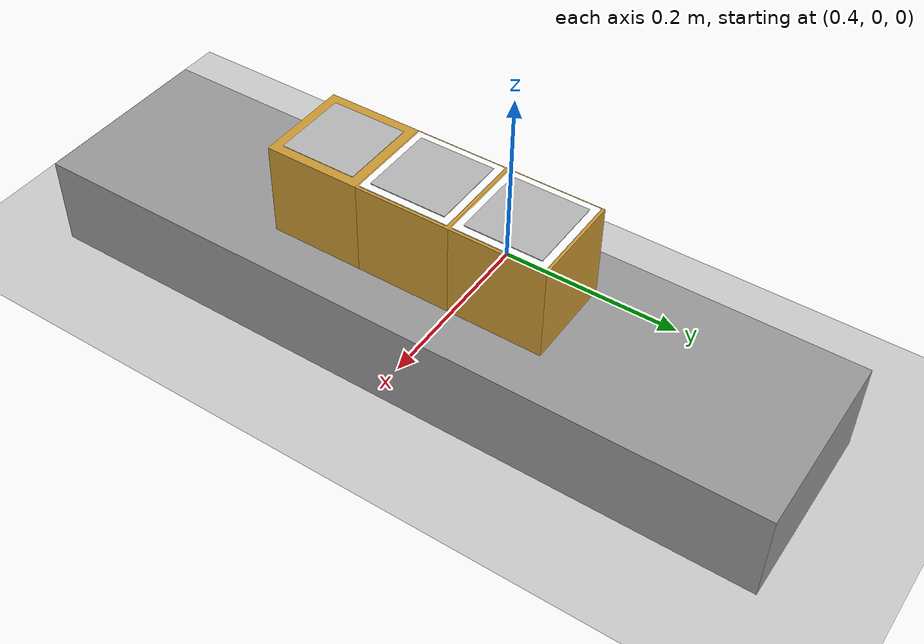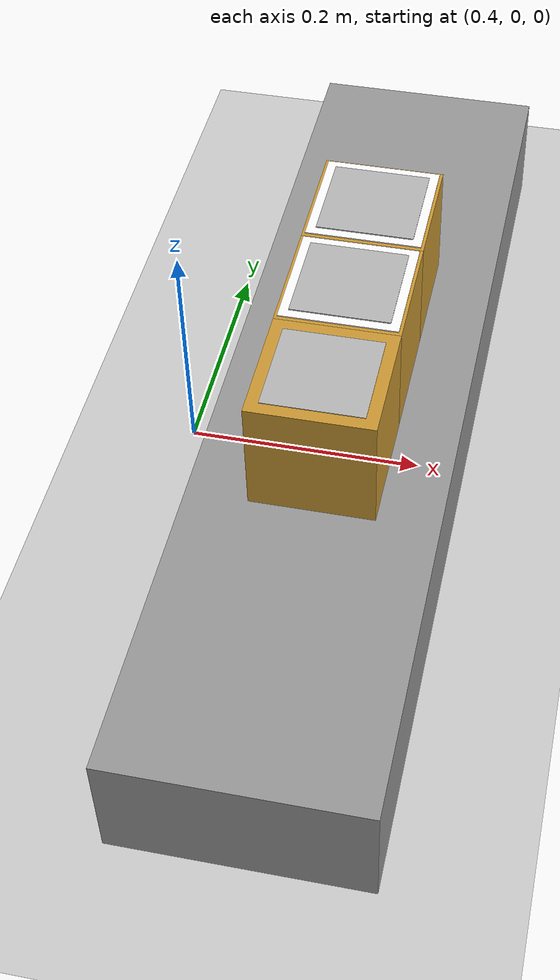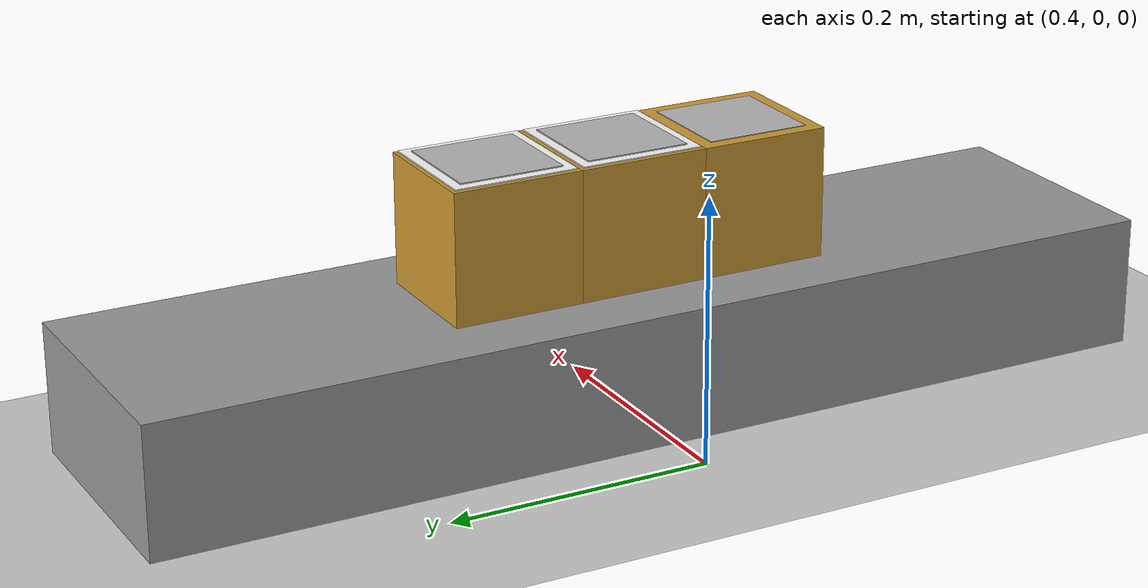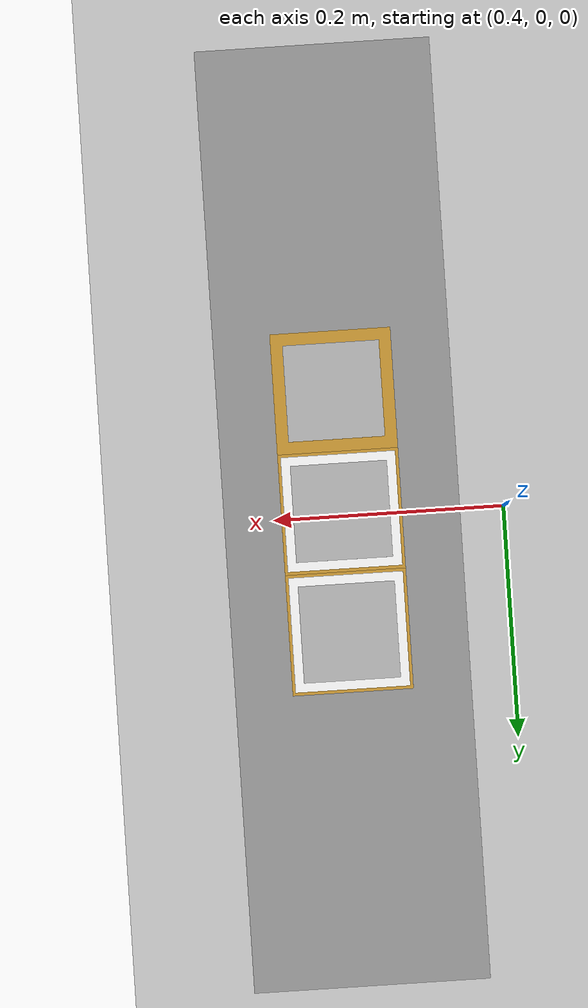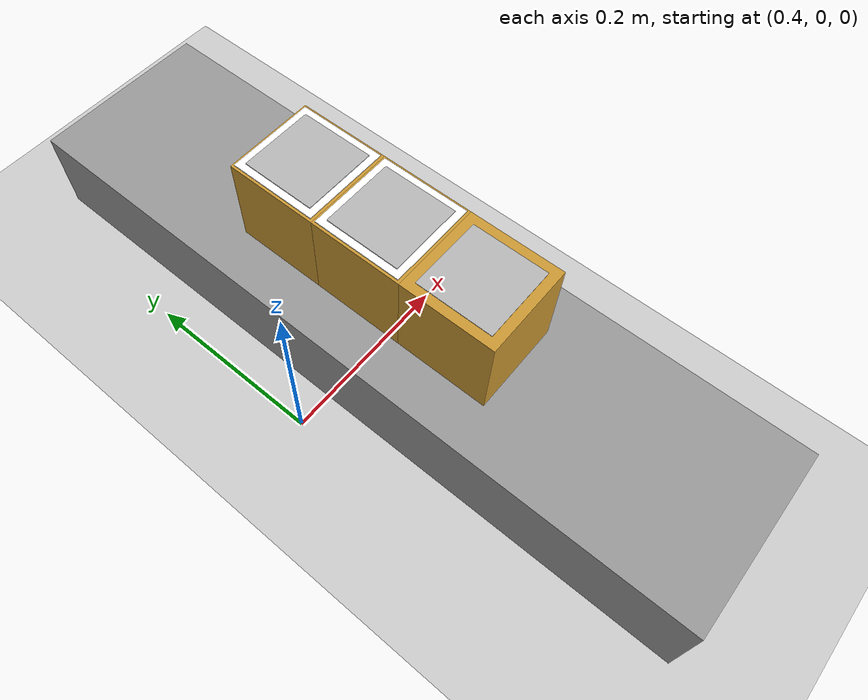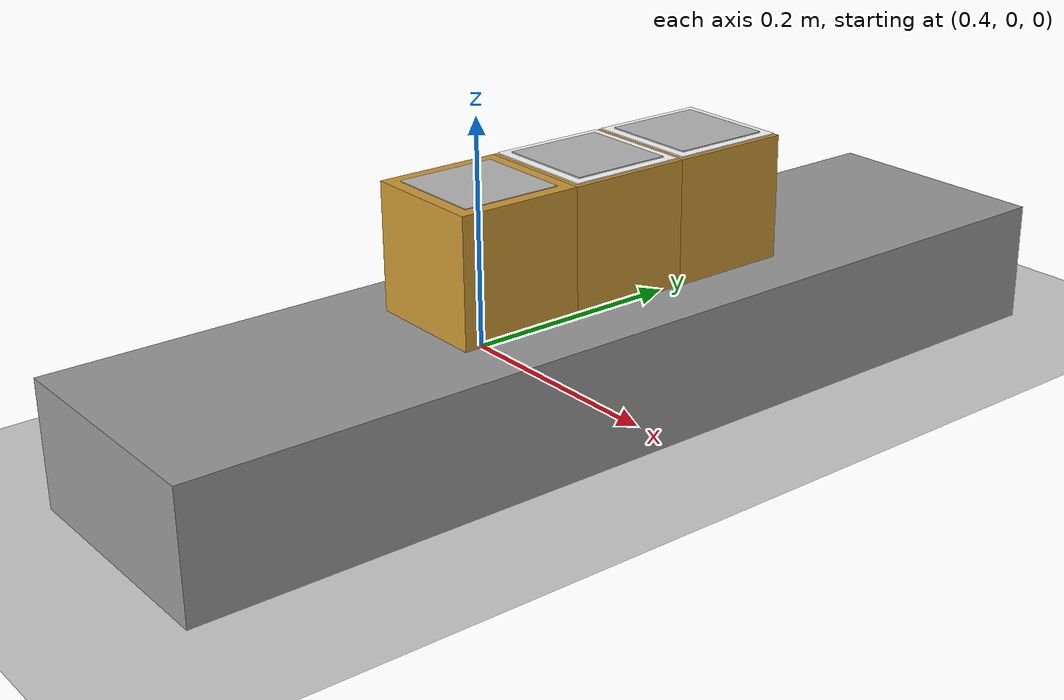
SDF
<?xml version="1.0"?>
<sdf version="1.6">
    <world name="warehouse">
        <include><uri>model://sun</uri></include>
        <include><uri>model://ground_plane</uri></include>

        <plugin name="gazebo_ros_state" filename="libgazebo_ros_state.so"/>

        <plugin name="gazebo_link_attacher" filename="libgazebo_link_attacher.so"/>

        <model name="aruco_platform">
            <static>true</static>
            <pose>0.54 0.0 0.05 0 0 0</pose>

            <link name="link">
                <collision name="collision">
                    <geometry>
                        <box>
                            <size>0.2 0.8 0.10</size>
                        </box>
                    </geometry>
                </collision>

                <visual name="visual">
                    <geometry>
                        <box>
                            <size>0.2 0.8 0.10</size>
                        </box>
                    </geometry>
                    <material>
                        <ambient>0.4 0.4 0.4 1</ambient>
                        <diffuse>0.6 0.6 0.6 1</diffuse>
                    </material>
                </visual>
            </link>
        </model>

        <include>
            <uri>model://box_with_aruco_0</uri>
            <pose>0.54 0.0 0.15 0 0 0</pose>
        </include>
        <include>
            <uri>model://box_with_aruco_1</uri>
            <pose>0.54 0.1 0.15 0 0 0</pose>
        </include>
        <include>
            <uri>model://box_with_aruco_2</uri>
            <pose>0.54 -0.1 0.15 0 0 0</pose>
        </include>

        <physics type="ode">
            <max_step_size>0.001</max_step_size>
            <real_time_factor>1.0</real_time_factor>
            <real_time_update_rate>1000</real_time_update_rate>
            <ode><solver>
                <type>quick</type>
                <iters>100</iters>
                <sor>1.3</sor>
            </solver></ode>
        </physics>
    </world>
</sdf>

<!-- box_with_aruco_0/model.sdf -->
<sdf version="1.6">
    <model name="box_with_aruco_0">
        <link name="link">
            <inertial>
                <mass>0.03</mass>
                <inertia>
                    <ixx>5e-5</ixx>
                    <iyy>5e-5</iyy>
                    <izz>5e-5</izz>
                    <ixy>0</ixy>
                    <ixz>0</ixz>
                    <iyz>0</iyz>
                </inertia>
            </inertial>

            <collision name="col">
                <geometry>
                    <box>
                        <size>0.1 0.1 0.1</size>
                    </box>
                </geometry>
            </collision>

            <visual name="vis_body">
                <geometry>
                    <box>
                        <size>0.1 0.1 0.1</size>
                    </box>
                </geometry>
                <material>
                    <ambient>0.8 0.6 0.2 1</ambient>
                    <diffuse>0.8 0.6 0.2 1</diffuse>
                </material>
            </visual>

            <visual name="vis_marker_bg">
                <pose>0 0 0.0510 0 0 0</pose>
                <geometry>
                    <box>
                        <size>0.095 0.095 0.001</size>
                    </box>
                </geometry>
                <material>
                    <ambient>1 1 1 1</ambient>
                    <diffuse>1 1 1 1</diffuse>
                </material>
            </visual>

            <visual name="vis_marker">
                <pose>0 0 0.0520 0 0 0</pose>
                <geometry>
                    <box>
                        <size>0.08 0.08 0.001</size>
                    </box>
                </geometry>
                <material>
                    <script>
                    <uri>model://box_with_aruco_0/materials/scripts</uri>
                    <uri>model://box_with_aruco_0/materials/textures</uri>
                    <name>Aruco/Marker0</name>
                    </script>
                </material>
            </visual>
        </link>
    </model>
</sdf>

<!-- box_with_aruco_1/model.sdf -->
<sdf version="1.6">
    <model name="box_with_aruco_1">
        <link name="link">
            <inertial>
                <mass>0.03</mass>
                <inertia>
                    <ixx>5e-5</ixx>
                    <iyy>5e-5</iyy>
                    <izz>5e-5</izz>
                    <ixy>0</ixy>
                    <ixz>0</ixz>
                    <iyz>0</iyz>
                </inertia>
            </inertial>

            <collision name="col">
                <geometry>
                    <box>
                        <size>0.1 0.1 0.1</size>
                    </box>
                </geometry>
            </collision>

            <visual name="vis_body">
                <geometry>
                    <box>
                        <size>0.1 0.1 0.1</size>
                    </box>
                </geometry>
                <material>
                    <ambient>0.8 0.6 0.2 1</ambient>
                    <diffuse>0.8 0.6 0.2 1</diffuse>
                </material>
            </visual>

            <visual name="vis_marker_bg">
                <pose>0 0 0.0510 0 0 0</pose>
                <geometry>
                    <box>
                        <size>0.095 0.095 0.001</size>
                    </box>
                </geometry>
                <material>
                    <ambient>1 1 1 1</ambient>
                    <diffuse>1 1 1 1</diffuse>
                </material>
            </visual>

            <visual name="vis_marker">
                <pose>0 0 0.0520 0 0 0</pose>
                <geometry>
                    <box>
                        <size>0.08 0.08 0.001</size>
                    </box>
                </geometry>
                <material>
                    <script>
                    <uri>model://box_with_aruco_1/materials/scripts</uri>
                    <uri>model://box_with_aruco_1/materials/textures</uri>
                    <name>Aruco/Marker1</name>
                    </script>
                </material>
            </visual>
        </link>
    </model>
</sdf>

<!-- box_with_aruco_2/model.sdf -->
<sdf version="1.6">
    <model name="box_with_aruco_2">
        <link name="link">
            <inertial><mass>0.03</mass>
                <inertia><ixx>5e-5</ixx><iyy>5e-5</iyy><izz>5e-5</izz>
                        <ixy>0</ixy><ixz>0</ixz><iyz>0</iyz></inertia></inertial>
            <collision name="col"><geometry><box><size>0.1 0.1 0.1</size></box></geometry></collision>
            <visual name="vis_body"><geometry><box><size>0.1 0.1 0.1</size></box></geometry>
                <material><ambient>0.8 0.6 0.2 1</ambient></material></visual>
            <visual name="vis_marker">
                <pose>0 0 0.0501 0 0 0</pose>
                <geometry><box><size>0.08 0.08 0.001</size></box></geometry>
                <material><script>
                    <uri>model://box_with_aruco_2/materials/scripts</uri>
                    <uri>model://box_with_aruco_2/materials/textures</uri>
                    <name>Aruco/Marker2</name>
                </script></material>
            </visual>
        </link>
    </model>
</sdf>
